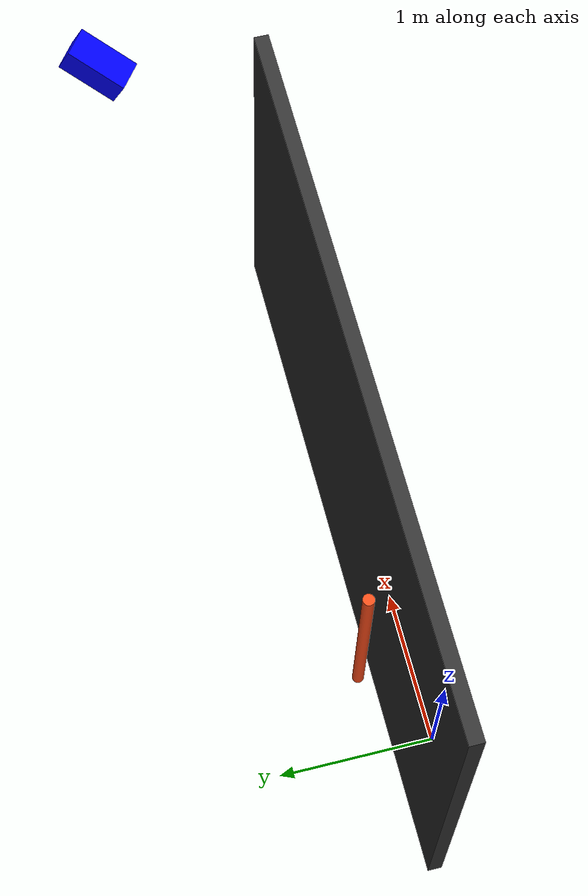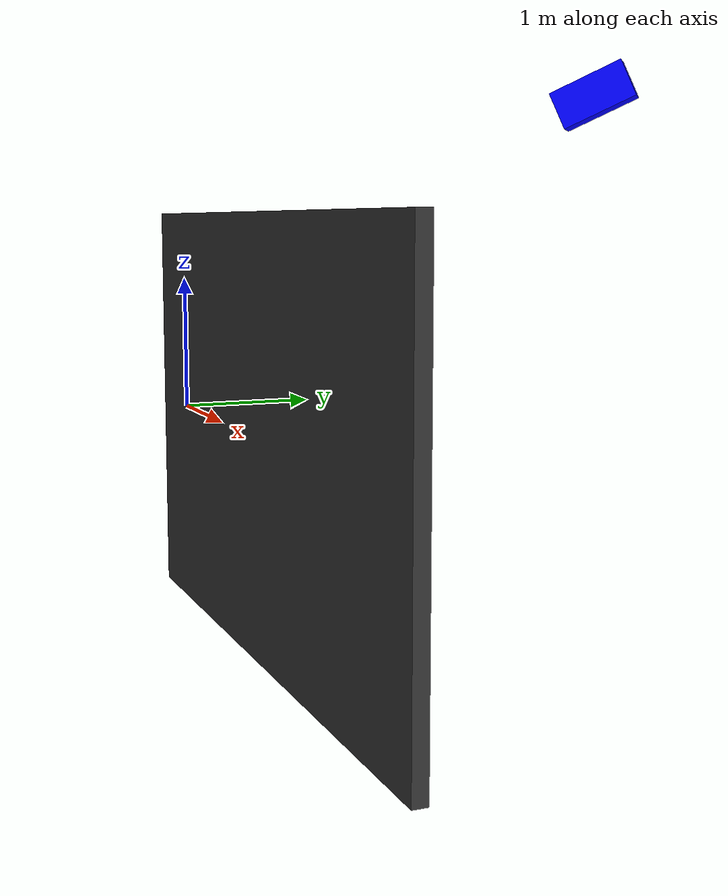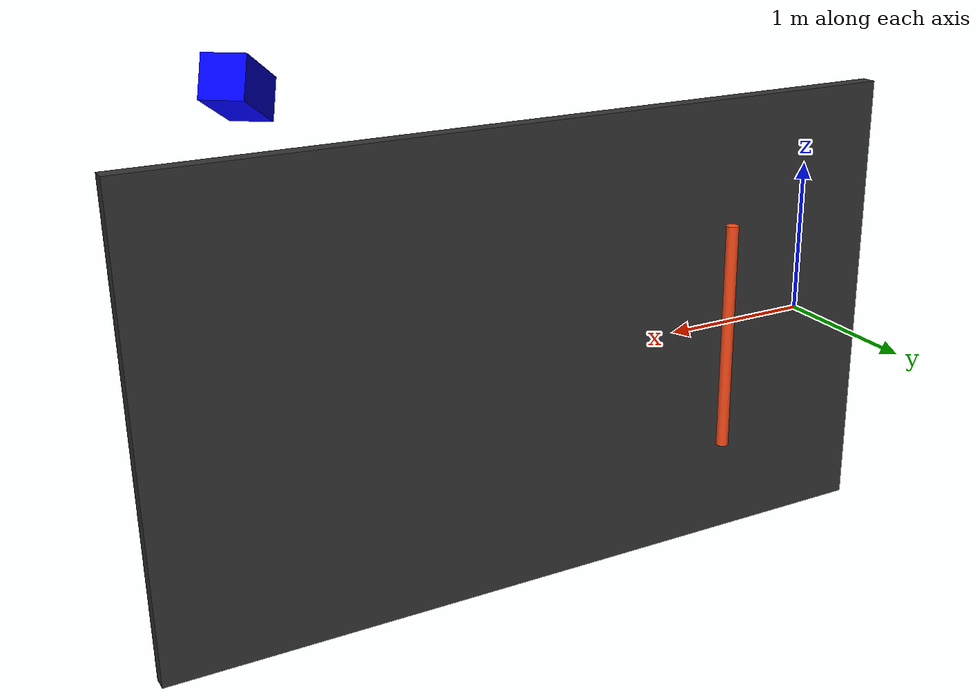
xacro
<?xml version="1.0"?>
<robot xmlns:xacro="http://www.ros.org/wiki/xacro"  name="robot">

    <material name="grey">
        <color rgba="0.2 0.2 0.2 1"/>
    </material>

    <material name="white">
        <color rgba="1 1 1 1"/>
    </material>

    <material name="orange">
        <color rgba="1 0.3 0.1 1"/>
    </material>

    <material name="blue">
        <color rgba="0 0 1 1"/>
    </material>

    <link name="world"></link>

    <joint name="world_to_base" type="fixed">
        <parent link="world" />
        <child link="base" />
        <origin  rpy="0 0 0" xyz="0 0 0" />
    </joint>

    <link name="base">
        <visual>
            <origin xyz="2 0 0" rpy="0 0 0"/>
            <geometry>
                <box size="5 0.1 3" />
            </geometry>
            <material name="grey" />
        </visual>
    </link>

    <joint name="base_to_l3" type="revolute">
        <parent link="base" />
        <child link="l3" />
        <origin  rpy="0 0 0" xyz="0 0.25 0" />
        <axis rpy="0 0 0" xyz="0 1 0" />
        <limit effort="0.1" lower="-0.6" upper="0.6" velocity="0.2"/>
    </joint>

    <link name="l3">
        <visual>
            <origin xyz="0.75 0 0" rpy="0 0 0"/>
            <geometry>
                <cylinder length="1.5" radius="0.04" />
            </geometry>
            <material name="orange" />
        </visual>
    </link>

    <joint name="world_to_camera" type="fixed">
        <parent link="world" />
        <child link="camera" />
        <origin  rpy="-2 0 2.5" xyz="4 1 2" />
    </joint>

    <link name="camera">
        <visual>
            <origin xyz="0 0 -0.2"/>
            <geometry>
                <box size="0.2 0.2 0.4" />
            </geometry>
            <material name="blue" />
        </visual>
    </link>

</robot>
